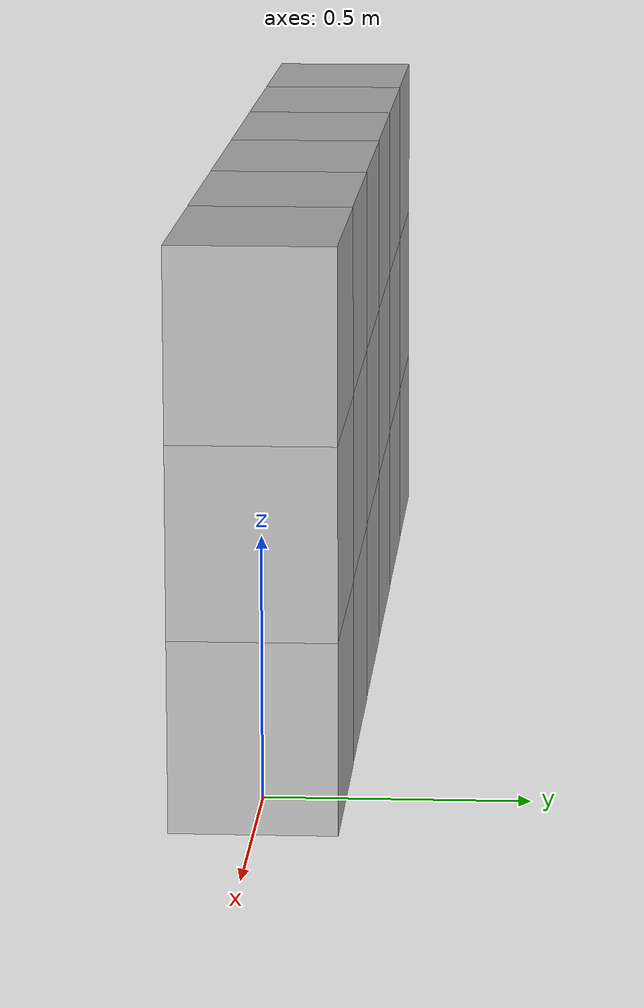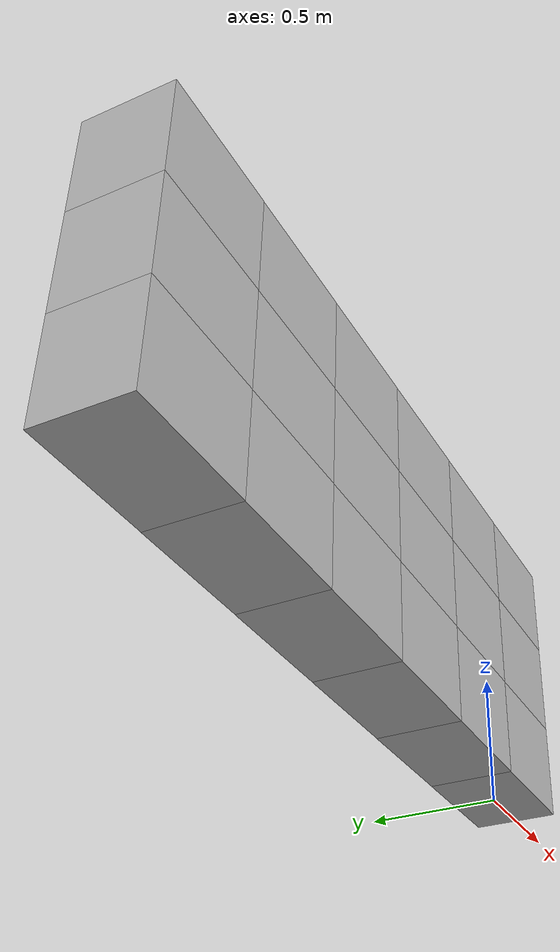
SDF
<?xml version='1_0'?>
<sdf version="1.5">
  <model name="realistic_curve_side1_1">
    <pose>0 0 0 0 0 1.57079633</pose>
    <static>true</static>
    <!-- 1st row -->
    <link name="link_0">
      <collision name="collision_0">
        <pose>0 0 0.18 0 0 3.14</pose>
        <geometry>
          <box>
            <size>0.31 0.465 0.36</size>
          </box>
        </geometry>
      </collision>
      <visual name='visual_0'>
        <pose>0 0 0.18 0 0 3.14</pose>
        <geometry>
            <mesh>
              <uri>model://L-corridor_curve_real/meshes/exact_blue_circle_border.dae</uri>
            </mesh>
        </geometry>
      </visual>
    </link>

    <link name="link_1">
      <collision name="collision_1">
        <pose>0 0 0.54 0 0 3.14</pose>
        <geometry>
          <box>
            <size>0.31 0.465 0.36</size>
          </box>
        </geometry>
      </collision>
      <visual name='visual_1'>
        <pose>0 0 0.54 0 0 3.14</pose>
        <geometry>
            <mesh>
              <uri>model://L-corridor_curve_real/meshes/exact_red_circle_border.dae</uri>
            </mesh>
        </geometry>
      </visual>
    </link>

    <link name="link_2">
      <collision name="collision_2">
        <pose>0 0 0.9 0 0 3.14</pose>
        <geometry>
          <box>
            <size>0.31 0.465 0.36</size>
          </box>
        </geometry>
      </collision>
      <visual name='visual_2'>
        <pose>0 0 0.9 0 0 3.14</pose>
        <geometry>
            <mesh>
              <uri>model://L-corridor_curve_real/meshes/exact_green_circle_border.dae</uri>
            </mesh>
        </geometry>
      </visual>
    </link>
	<!-- 2 row -->
    <link name="link_3">
      <collision name="collision_3">
        <pose>0 0.465 0.54 0 0 3.14</pose>
        <geometry>
          <box>
            <size>0.31 0.465 0.36</size>
          </box>
        </geometry>
      </collision>
      <visual name='visual_3'>
        <pose>0 0.465 0.54 0 0 3.14</pose>
        <geometry>
            <mesh>
              <uri>model://L-corridor_curve_real/meshes/exact_blue_circle_border.dae</uri>
            </mesh>
        </geometry>
      </visual>
    </link>

    <link name="link_4">
      <collision name="collision_4">
        <pose>0 0.465 0.9 0 0 3.14</pose>
        <geometry>
          <box>
            <size>0.31 0.465 0.36</size>
          </box>
        </geometry>
      </collision>
      <visual name='visual_4'>
        <pose>0 0.465 0.9 0 0 3.14</pose>
        <geometry>
            <mesh>
              <uri>model://L-corridor_curve_real/meshes/exact_red_circle_border.dae</uri>
            </mesh>
        </geometry>
      </visual>
    </link>

    <link name="link_5">
      <collision name="collision_5">
        <pose>0 0.465 0.18 0 0 3.14</pose>
        <geometry>
          <box>
            <size>0.31 0.465 0.36</size>
          </box>
        </geometry>
      </collision>
      <visual name='visual_5'>
        <pose>0 0.465 0.18 0 0 3.14</pose>
        <geometry>
            <mesh>
              <uri>model://L-corridor_curve_real/meshes/exact_green_circle_border.dae</uri>
            </mesh>
        </geometry>
      </visual>
    </link>
	<!-- 3 row -->
    <link name="link_6">
      <collision name="collision_6">
        <pose>0 0.93 0.9 0 0 3.14</pose>
        <geometry>
          <box>
            <size>0.31 0.465 0.36</size>
          </box>
        </geometry>
      </collision>
      <visual name='visual_6'>
        <pose>0 0.93 0.9 0 0 3.14</pose>
        <geometry>
            <mesh>
              <uri>model://L-corridor_curve_real/meshes/exact_blue_circle_border.dae</uri>
            </mesh>
        </geometry>
      </visual>
    </link>

    <link name="link_7">
      <collision name="collision_7">
        <pose>0 0.93 0.18 0 0 3.14</pose>
        <geometry>
          <box>
            <size>0.31 0.465 0.36</size>
          </box>
        </geometry>
      </collision>
      <visual name='visual_7'>
        <pose>0 0.93 0.18 0 0 3.14</pose>
        <geometry>
            <mesh>
              <uri>model://L-corridor_curve_real/meshes/exact_red_circle_border.dae</uri>
            </mesh>
        </geometry>
      </visual>
    </link>

    <link name="link_8">
      <collision name="collision_8">
        <pose>0 0.93 0.54 0 0 3.14</pose>
        <geometry>
          <box>
            <size>0.31 0.465 0.36</size>
          </box>
        </geometry>
      </collision>
      <visual name='visual_8'>
        <pose>0 0.93 0.54 0 0 3.14</pose>
        <geometry>
            <mesh>
              <uri>model://L-corridor_curve_real/meshes/exact_green_circle_border.dae</uri>
            </mesh>
        </geometry>
      </visual>
    </link>

    <!-- 4 row -->
    <link name="link_9">
      <collision name="collision_9">
        <pose>0 1.395 0.18 0 0 3.14</pose>
        <geometry>
          <box>
            <size>0.31 0.465 0.36</size>
          </box>
        </geometry>
      </collision>
      <visual name='visual_9'>
        <pose>0 1.395 0.18 0 0 3.14</pose>
        <geometry>
            <mesh>
              <uri>model://L-corridor_curve_real/meshes/exact_blue_circle_border.dae</uri>
            </mesh>
        </geometry>
      </visual>
    </link>

    <link name="link_10">
      <collision name="collision_10">
        <pose>0 1.395 0.54 0 0 3.14</pose>
        <geometry>
          <box>
            <size>0.31 0.465 0.36</size>
          </box>
        </geometry>
      </collision>
      <visual name='visual_10'>
        <pose>0 1.395 0.54 0 0 3.14</pose>
        <geometry>
            <mesh>
              <uri>model://L-corridor_curve_real/meshes/exact_red_circle_border.dae</uri>
            </mesh>
        </geometry>
      </visual>
    </link>

    <link name="link_11">
      <collision name="collision_11">
        <pose>0 1.395 0.9 0 0 3.14</pose>
        <geometry>
          <box>
            <size>0.31 0.465 0.36</size>
          </box>
        </geometry>
      </collision>
      <visual name='visual_11'>
        <pose>0 1.395 0.9 0 0 3.14</pose>
        <geometry>
            <mesh>
              <uri>model://L-corridor_curve_real/meshes/exact_green_circle_border.dae</uri>
            </mesh>
        </geometry>
      </visual>
    </link>
	<!-- 5 row -->
    <link name="link_12">
      <collision name="collision_12">
        <pose>0 1.86 0.54 0 0 3.14</pose>
        <geometry>
          <box>
            <size>0.31 0.465 0.36</size>
          </box>
        </geometry>
      </collision>
      <visual name='visual_12'>
        <pose>0 1.86 0.54 0 0 3.14</pose>
        <geometry>
            <mesh>
              <uri>model://L-corridor_curve_real/meshes/exact_blue_circle_border.dae</uri>
            </mesh>
        </geometry>
      </visual>
    </link>

    <link name="link_13">
      <collision name="collision_13">
        <pose>0 1.86 0.9 0 0 3.14</pose>
        <geometry>
          <box>
            <size>0.31 0.465 0.36</size>
          </box>
        </geometry>
      </collision>
      <visual name='visual_13'>
        <pose>0 1.86 0.9 0 0 3.14</pose>
        <geometry>
            <mesh>
              <uri>model://L-corridor_curve_real/meshes/exact_red_circle_border.dae</uri>
            </mesh>
        </geometry>
      </visual>
    </link>

    <link name="link_14">
      <collision name="collision_14">
        <pose>0 1.86 0.18 0 0 3.14</pose>
        <geometry>
          <box>
            <size>0.31 0.465 0.36</size>
          </box>
        </geometry>
      </collision>
      <visual name='visual_14'>
        <pose>0 1.86 0.18 0 0 3.14</pose>
        <geometry>
            <mesh>
              <uri>model://L-corridor_curve_real/meshes/exact_green_circle_border.dae</uri>
            </mesh>
        </geometry>
      </visual>
    </link>
	<!-- 6 row -->
    <link name="link_15">
      <collision name="collision_15">
        <pose>0 2.325 0 0 3.14</pose>
        <geometry>
          <box>
            <size>0.31 0.465 0.36</size>
          </box>
        </geometry>
      </collision>
      <visual name='visual_15'>
        <pose>0 2.325 0.9 0 0 3.14</pose>
        <geometry>
            <mesh>
              <uri>model://L-corridor_curve_real/meshes/exact_blue_circle_border.dae</uri>
            </mesh>
        </geometry>
      </visual>
    </link>

    <link name="link_16">
      <collision name="collision_16">
        <pose>0 2.325 0.18 0 0 3.14</pose>
        <geometry>
          <box>
            <size>0.31 0.465 0.36</size>
          </box>
        </geometry>
      </collision>
      <visual name='visual_16'>
        <pose>0 2.325 0.18 0 0 3.14</pose>
        <geometry>
            <mesh>
              <uri>model://L-corridor_curve_real/meshes/exact_red_circle_border.dae</uri>
            </mesh>
        </geometry>
      </visual>
    </link>

    <link name="link_17">
      <collision name="collision_17">
        <pose>0 2.325 0.54 0 0 3.14</pose>
        <geometry>
          <box>
            <size>0.31 0.465 0.36</size>
          </box>
        </geometry>
      </collision>
      <visual name='visual_17'>
        <pose>0 2.325 0.54 0 0 3.14</pose>
        <geometry>
            <mesh>
              <uri>model://L-corridor_curve_real/meshes/exact_green_circle_border.dae</uri>
            </mesh>
        </geometry>
      </visual>
    </link>
  </model>
</sdf>
